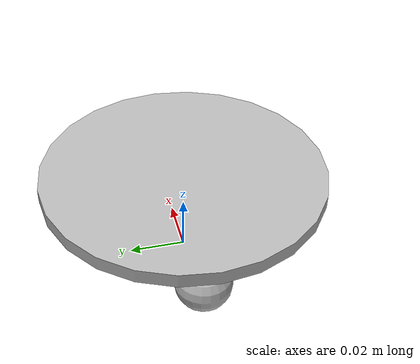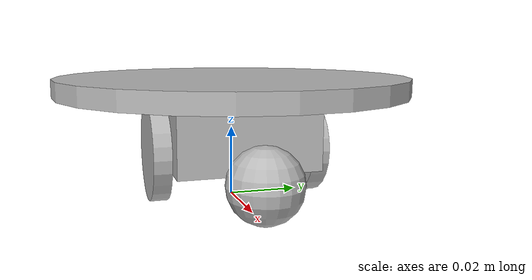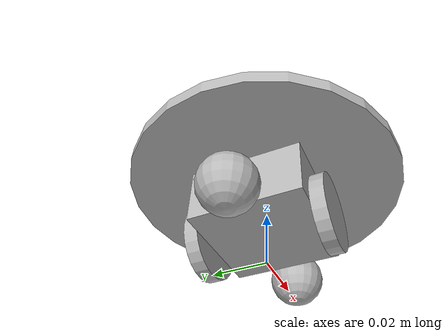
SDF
<?xml version='1.0'?>
<sdf version='1.6'>
		<model name="VacuumCleaner">
			<self_collide>true</self_collide>
			<pose>0.0 0.0 0.0 0.0 0.0 0.0</pose>
			<!-- Start of parts of the pmodel VacuumCleaner -->
			<!-- End of parts of the pmodel VacuumCleaner -->

			<!-- Start of links of the pmodel VacuumCleaner -->
			<!-- link full name is VacuumCleaner::Cylinder -->
			<link name="1-Cylinder">
					<pose>0.0 0.0 0.032499998807907104 0.0 0.0 0.0</pose>
					<inertial>
						<pose>0.0 0.0 0.0 0.0 0.0 0.0</pose>
						<inertia>
							<ixx>1.0</ixx>
							<ixy>0.0</ixy>
							<ixz>0.0</ixz>
							<iyy>1.0</iyy>
							<iyz>0.0</iyz>
							<izz>1.0</izz>
						</inertia>
						<mass>1.0</mass>
					</inertial>
					<!-- body full name is VacuumCleaner::Cylinder::Cylinder -->
					<collision name="1--Cylinder">
						<laser_retro>0.0</laser_retro>
						<pose>0.0 0.0 0.0 0.0 0.0 0.0</pose>
						<geometry>
							<cylinder>
								<radius>0.05000000074505806</radius>
								<length>0.004999999888241291</length>
							</cylinder>
						</geometry>
						<surface>
							<bounce>
								<restitution_coefficient>0.0</restitution_coefficient>
								<threshold>100000.0</threshold>
							</bounce>
							<friction>
								<ode>
									<mu>1.0</mu>
									<mu2>1.0</mu2>
									<fdir1>0.0 0.0 0.0</fdir1>
									<slip1>0.0</slip1>
									<slip2>0.0</slip2>
								</ode>
								<torsional>
									<coefficient>1.0</coefficient>
									<surface_radius>0.0</surface_radius>
								</torsional>
							</friction>
						</surface>
					</collision>
					<visual name="1--Cylinder">
						<laser_retro>0.0</laser_retro>
						<pose>0.0 0.0 0.0 0.0 0.0 0.0</pose>
						<geometry>
							<cylinder>
								<radius>0.05000000074505806</radius>
								<length>0.004999999888241291</length>
							</cylinder>
						</geometry>
						<surface>
							<bounce>
								<restitution_coefficient>0.0</restitution_coefficient>
								<threshold>100000.0</threshold>
							</bounce>
							<friction>
								<ode>
									<mu>1.0</mu>
									<mu2>1.0</mu2>
									<fdir1>0.0 0.0 0.0</fdir1>
									<slip1>0.0</slip1>
									<slip2>0.0</slip2>
								</ode>
								<torsional>
									<coefficient>1.0</coefficient>
									<surface_radius>0.0</surface_radius>
								</torsional>
							</friction>
						</surface>
					</visual>
					<!-- WARNING: The SDF generator relies on annotations of the sensor Proximity to specify aspects of the
					sensor that are accounted for in the equations. -->
					<!-- sensor simple name is Proximity -->
					<sensor name="Proximity" type="logical_camera">
						<pose>-0.05000000074505806 0.0 0.029999999329447746 3.141592653589793 -1.5707036693855094 3.141592653589793</pose>
						<visualize>true</visualize>
						<always_on>true</always_on>
						<update_rate>1.0</update_rate>
						<logical_camera>
							<near>0.019999999552965164</near>
							<far>0.30000001192092896</far>
							<aspect_ratio>0.0</aspect_ratio>
							<horizontal_fov>0.0</horizontal_fov>
						</logical_camera>
					</sensor>
					<!-- WARNING: The SDF generator relies on annotations of the sensor acc_left to specify aspects of the
					sensor that are accounted for in the equations. -->
					<!-- sensor simple name is acc_left -->
					<sensor name="acc_left" type="logical_camera">
						<pose>0.0 -0.05000000074505806 0.029999999329447746 3.141592653589793 -1.5707036693855094 3.141592653589793</pose>
						<visualize>true</visualize>
						<always_on>true</always_on>
						<update_rate>1.0</update_rate>
						<logical_camera>
							<near>0.019999999552965164</near>
							<far>0.30000001192092896</far>
							<aspect_ratio>0.0</aspect_ratio>
							<horizontal_fov>0.0</horizontal_fov>
						</logical_camera>
					</sensor>
					<!-- WARNING: The SDF generator relies on annotations of the sensor acc_right to specify aspects of the
					sensor that are accounted for in the equations. -->
					<!-- sensor simple name is acc_right -->
					<sensor name="acc_right" type="logical_camera">
						<pose>0.0 0.05000000074505806 0.029999999329447746 3.141592653589793 -1.5707036693855094 3.141592653589793</pose>
						<visualize>true</visualize>
						<always_on>true</always_on>
						<update_rate>1.0</update_rate>
						<logical_camera>
							<near>0.019999999552965164</near>
							<far>0.30000001192092896</far>
							<aspect_ratio>0.0</aspect_ratio>
							<horizontal_fov>0.0</horizontal_fov>
						</logical_camera>
					</sensor>
			</link>
			<!-- link full name is VacuumCleaner::FrontCaster -->
			<link name="2-FrontCaster">
					<pose>0.029999999329447746 0.0 0.009999999776482582 0.0 0.0 0.0</pose>
					<inertial>
						<pose>0.0 0.0 0.0 0.0 0.0 0.0</pose>
						<inertia>
							<ixx>1.0</ixx>
							<ixy>0.0</ixy>
							<ixz>0.0</ixz>
							<iyy>1.0</iyy>
							<iyz>0.0</iyz>
							<izz>1.0</izz>
						</inertia>
						<mass>1.0</mass>
					</inertial>
					<!-- body full name is VacuumCleaner::FrontCaster::FrontCaster -->
					<collision name="2--FrontCaster">
						<laser_retro>0.0</laser_retro>
						<pose>0.0 0.0 0.0 0.0 0.0 0.0</pose>
						<geometry>
							<sphere>
								<radius>0.009999999776482582</radius>
							</sphere>
						</geometry>
						<surface>
							<bounce>
								<restitution_coefficient>0.0</restitution_coefficient>
								<threshold>100000.0</threshold>
							</bounce>
							<friction>
								<ode>
									<mu>1.0</mu>
									<mu2>1.0</mu2>
									<fdir1>0.0 0.0 0.0</fdir1>
									<slip1>0.0</slip1>
									<slip2>0.0</slip2>
								</ode>
								<torsional>
									<coefficient>1.0</coefficient>
									<surface_radius>0.0</surface_radius>
								</torsional>
							</friction>
						</surface>
					</collision>
					<visual name="2--FrontCaster">
						<laser_retro>0.0</laser_retro>
						<pose>0.0 0.0 0.0 0.0 0.0 0.0</pose>
						<geometry>
							<sphere>
								<radius>0.009999999776482582</radius>
							</sphere>
						</geometry>
						<surface>
							<bounce>
								<restitution_coefficient>0.0</restitution_coefficient>
								<threshold>100000.0</threshold>
							</bounce>
							<friction>
								<ode>
									<mu>1.0</mu>
									<mu2>1.0</mu2>
									<fdir1>0.0 0.0 0.0</fdir1>
									<slip1>0.0</slip1>
									<slip2>0.0</slip2>
								</ode>
								<torsional>
									<coefficient>1.0</coefficient>
									<surface_radius>0.0</surface_radius>
								</torsional>
							</friction>
						</surface>
					</visual>
			</link>
			<!-- link full name is VacuumCleaner::BackCaster -->
			<link name="3-BackCaster">
					<pose>-0.029999999329447746 0.0 0.009999999776482582 0.0 0.0 0.0</pose>
					<inertial>
						<pose>0.0 0.0 0.0 0.0 0.0 0.0</pose>
						<inertia>
							<ixx>1.0</ixx>
							<ixy>0.0</ixy>
							<ixz>0.0</ixz>
							<iyy>1.0</iyy>
							<iyz>0.0</iyz>
							<izz>1.0</izz>
						</inertia>
						<mass>1.0</mass>
					</inertial>
					<!-- body full name is VacuumCleaner::BackCaster::BackCaster -->
					<collision name="3--BackCaster">
						<laser_retro>0.0</laser_retro>
						<pose>0.0 0.0 0.0 0.0 0.0 0.0</pose>
						<geometry>
							<sphere>
								<radius>0.009999999776482582</radius>
							</sphere>
						</geometry>
						<surface>
							<bounce>
								<restitution_coefficient>0.0</restitution_coefficient>
								<threshold>100000.0</threshold>
							</bounce>
							<friction>
								<ode>
									<mu>1.0</mu>
									<mu2>1.0</mu2>
									<fdir1>0.0 0.0 0.0</fdir1>
									<slip1>0.0</slip1>
									<slip2>0.0</slip2>
								</ode>
								<torsional>
									<coefficient>1.0</coefficient>
									<surface_radius>0.0</surface_radius>
								</torsional>
							</friction>
						</surface>
					</collision>
					<visual name="3--BackCaster">
						<laser_retro>0.0</laser_retro>
						<pose>0.0 0.0 0.0 0.0 0.0 0.0</pose>
						<geometry>
							<sphere>
								<radius>0.009999999776482582</radius>
							</sphere>
						</geometry>
						<surface>
							<bounce>
								<restitution_coefficient>0.0</restitution_coefficient>
								<threshold>100000.0</threshold>
							</bounce>
							<friction>
								<ode>
									<mu>1.0</mu>
									<mu2>1.0</mu2>
									<fdir1>0.0 0.0 0.0</fdir1>
									<slip1>0.0</slip1>
									<slip2>0.0</slip2>
								</ode>
								<torsional>
									<coefficient>1.0</coefficient>
									<surface_radius>0.0</surface_radius>
								</torsional>
							</friction>
						</surface>
					</visual>
			</link>
			<!-- link full name is VacuumCleaner::LeftWheel -->
			<link name="4-LeftWheel">
					<pose>0.0 0.02250000089406967 0.014000000432133675 1.5700000524520874 0.0 0.0</pose>
					<inertial>
						<pose>0.0 0.0 0.0 0.0 0.0 0.0</pose>
						<inertia>
							<ixx>1.0</ixx>
							<ixy>0.0</ixy>
							<ixz>0.0</ixz>
							<iyy>1.0</iyy>
							<iyz>0.0</iyz>
							<izz>1.0</izz>
						</inertia>
						<mass>1.0</mass>
					</inertial>
					<!-- body full name is VacuumCleaner::LeftWheel::LeftWheel -->
					<collision name="4--LeftWheel">
						<laser_retro>0.0</laser_retro>
						<pose>0.0 0.0 0.0 0.0 0.0 0.0</pose>
						<geometry>
							<cylinder>
								<radius>0.014000000432133675</radius>
								<length>0.004999999888241291</length>
							</cylinder>
						</geometry>
						<surface>
							<bounce>
								<restitution_coefficient>0.0</restitution_coefficient>
								<threshold>100000.0</threshold>
							</bounce>
							<friction>
								<ode>
									<mu>1.0</mu>
									<mu2>1.0</mu2>
									<fdir1>0.0 0.0 0.0</fdir1>
									<slip1>0.0</slip1>
									<slip2>0.0</slip2>
								</ode>
								<torsional>
									<coefficient>1.0</coefficient>
									<surface_radius>0.0</surface_radius>
								</torsional>
							</friction>
						</surface>
					</collision>
					<visual name="4--LeftWheel">
						<laser_retro>0.0</laser_retro>
						<pose>0.0 0.0 0.0 0.0 0.0 0.0</pose>
						<geometry>
							<cylinder>
								<radius>0.014000000432133675</radius>
								<length>0.004999999888241291</length>
							</cylinder>
						</geometry>
						<surface>
							<bounce>
								<restitution_coefficient>0.0</restitution_coefficient>
								<threshold>100000.0</threshold>
							</bounce>
							<friction>
								<ode>
									<mu>1.0</mu>
									<mu2>1.0</mu2>
									<fdir1>0.0 0.0 0.0</fdir1>
									<slip1>0.0</slip1>
									<slip2>0.0</slip2>
								</ode>
								<torsional>
									<coefficient>1.0</coefficient>
									<surface_radius>0.0</surface_radius>
								</torsional>
							</friction>
						</surface>
					</visual>
			</link>
			<!-- link full name is VacuumCleaner::RightWheel -->
			<link name="5-RightWheel">
					<pose>0.0 -0.02250000089406967 0.014000000432133675 1.5700000524520874 0.0 0.0</pose>
					<inertial>
						<pose>0.0 0.0 0.0 0.0 0.0 0.0</pose>
						<inertia>
							<ixx>1.0</ixx>
							<ixy>0.0</ixy>
							<ixz>0.0</ixz>
							<iyy>1.0</iyy>
							<iyz>0.0</iyz>
							<izz>1.0</izz>
						</inertia>
						<mass>1.0</mass>
					</inertial>
					<!-- body full name is VacuumCleaner::RightWheel::RightWheel -->
					<collision name="5--RightWheel">
						<laser_retro>0.0</laser_retro>
						<pose>0.0 0.0 0.0 0.0 0.0 0.0</pose>
						<geometry>
							<cylinder>
								<radius>0.014000000432133675</radius>
								<length>0.004999999888241291</length>
							</cylinder>
						</geometry>
						<surface>
							<bounce>
								<restitution_coefficient>0.0</restitution_coefficient>
								<threshold>100000.0</threshold>
							</bounce>
							<friction>
								<ode>
									<mu>1.0</mu>
									<mu2>1.0</mu2>
									<fdir1>0.0 0.0 0.0</fdir1>
									<slip1>0.0</slip1>
									<slip2>0.0</slip2>
								</ode>
								<torsional>
									<coefficient>1.0</coefficient>
									<surface_radius>0.0</surface_radius>
								</torsional>
							</friction>
						</surface>
					</collision>
					<visual name="5--RightWheel">
						<laser_retro>0.0</laser_retro>
						<pose>0.0 0.0 0.0 0.0 0.0 0.0</pose>
						<geometry>
							<cylinder>
								<radius>0.014000000432133675</radius>
								<length>0.004999999888241291</length>
							</cylinder>
						</geometry>
						<surface>
							<bounce>
								<restitution_coefficient>0.0</restitution_coefficient>
								<threshold>100000.0</threshold>
							</bounce>
							<friction>
								<ode>
									<mu>1.0</mu>
									<mu2>1.0</mu2>
									<fdir1>0.0 0.0 0.0</fdir1>
									<slip1>0.0</slip1>
									<slip2>0.0</slip2>
								</ode>
								<torsional>
									<coefficient>1.0</coefficient>
									<surface_radius>0.0</surface_radius>
								</torsional>
							</friction>
						</surface>
					</visual>
			</link>
			<!-- link full name is VacuumCleaner::Cuboid -->
			<link name="6-Cuboid">
					<pose>0.0 0.0 0.019999999552965164 0.0 0.0 0.0</pose>
					<inertial>
						<pose>0.0 0.0 0.0 0.0 0.0 0.0</pose>
						<inertia>
							<ixx>1.0</ixx>
							<ixy>0.0</ixy>
							<ixz>0.0</ixz>
							<iyy>1.0</iyy>
							<iyz>0.0</iyz>
							<izz>1.0</izz>
						</inertia>
						<mass>1.0</mass>
					</inertial>
					<!-- body full name is VacuumCleaner::Cuboid::Cuboid -->
					<collision name="6--Cuboid">
						<laser_retro>0.0</laser_retro>
						<pose>0.0 0.0 0.0 0.0 0.0 0.0</pose>
						<geometry>
							<box>
								<size>0.03999999910593033 0.03999999910593033 0.019999999552965164</size>
							</box>
						</geometry>
						<surface>
							<bounce>
								<restitution_coefficient>0.0</restitution_coefficient>
								<threshold>100000.0</threshold>
							</bounce>
							<friction>
								<ode>
									<mu>1.0</mu>
									<mu2>1.0</mu2>
									<fdir1>0.0 0.0 0.0</fdir1>
									<slip1>0.0</slip1>
									<slip2>0.0</slip2>
								</ode>
								<torsional>
									<coefficient>1.0</coefficient>
									<surface_radius>0.0</surface_radius>
								</torsional>
							</friction>
						</surface>
					</collision>
					<visual name="6--Cuboid">
						<laser_retro>0.0</laser_retro>
						<pose>0.0 0.0 0.0 0.0 0.0 0.0</pose>
						<geometry>
							<box>
								<size>0.03999999910593033 0.03999999910593033 0.019999999552965164</size>
							</box>
						</geometry>
						<surface>
							<bounce>
								<restitution_coefficient>0.0</restitution_coefficient>
								<threshold>100000.0</threshold>
							</bounce>
							<friction>
								<ode>
									<mu>1.0</mu>
									<mu2>1.0</mu2>
									<fdir1>0.0 0.0 0.0</fdir1>
									<slip1>0.0</slip1>
									<slip2>0.0</slip2>
								</ode>
								<torsional>
									<coefficient>1.0</coefficient>
									<surface_radius>0.0</surface_radius>
								</torsional>
							</friction>
						</surface>
					</visual>
			</link>
			<!-- End of links of the pmodel VacuumCleaner -->

			<!-- Start of joints of the pmodel VacuumCleaner -->
			<!-- Full name of joint: VacuumCleaner::Cylinder::LeftHinge from VacuumCleaner::Cylinder to VacuumCleaner::LeftWheel-->
			<joint name="7-LeftHinge" type="revolute">
				<pose>0.0 0.032464156161485895 0.045025866434408174 -1.5700000524520874 -0.0 0.0</pose>
				<parent>1-Cylinder</parent>
				<child>4-LeftWheel</child>
				<!-- WARNING: The SDF generator relies on annotations of the joint 7-LeftHinge to specify in SDF aspects of the joint that are
					 accounted for in the equations. -->
				<axis>
					<xyz>0 1 0</xyz>
				</axis>
			</joint>
			<!-- Full name of joint: VacuumCleaner::Cylinder::RightHinge from VacuumCleaner::Cylinder to VacuumCleaner::RightWheel-->
			<joint name="8-RightHinge" type="revolute">
				<pose>0.0 0.032535820847613216 -0.04497410860949358 -1.5700000524520874 -0.0 0.0</pose>
				<parent>1-Cylinder</parent>
				<child>5-RightWheel</child>
				<!-- WARNING: The SDF generator relies on annotations of the joint 8-RightHinge to specify in SDF aspects of the joint that are
					 accounted for in the equations. -->
				<axis>
					<xyz>0 1 0</xyz>
				</axis>
			</joint>
			<!-- Full name of joint: VacuumCleaner::Cylinder::FrontSpherical from VacuumCleaner::Cylinder to VacuumCleaner::FrontCaster-->
			<joint name="9-FrontSpherical" type="revolute">
				<pose>-0.009999999776482582 0.0 0.032499998807907104 0.0 -0.0 0.0</pose>
				<parent>1-Cylinder</parent>
				<child>2-FrontCaster</child>
				<!-- WARNING: The SDF generator relies on annotations of the joint 9-FrontSpherical to specify in SDF aspects of the joint that are
					 accounted for in the equations. -->
				<axis>
					<xyz>0 1 0</xyz>
				</axis>
			</joint>
			<!-- Full name of joint: VacuumCleaner::Cylinder::BackSpherical from VacuumCleaner::Cylinder to VacuumCleaner::BackCaster-->
			<joint name="10-BackSpherical" type="revolute">
				<pose>0.009999999776482582 0.0 0.032499998807907104 0.0 -0.0 0.0</pose>
				<parent>1-Cylinder</parent>
				<child>3-BackCaster</child>
				<!-- WARNING: The SDF generator relies on annotations of the joint 10-BackSpherical to specify in SDF aspects of the joint that are
					 accounted for in the equations. -->
				<axis>
					<xyz>0 1 0</xyz>
				</axis>
			</joint>
			<!-- End of joints of the pmodel VacuumCleaner -->

			<!-- Start of fixed connections of the pmodel VacuumCleaner -->
			<!-- fixed joint full name is VacuumCleaner::Cuboid::fixedJoint::VacuumCleaner::Cylinder from VacuumCleaner::Cuboid to VacuumCleaner::Cylinder -->
			<joint name="11-fixedJoint" type="fixed">
				<parent>6-Cuboid</parent>
				<child>1-Cylinder</child>
				<axis><xyz>0 0 1</xyz></axis>
			</joint>
			<!-- End of fixed connections of the pmodel VacuumCleaner -->
		</model>
</sdf>
